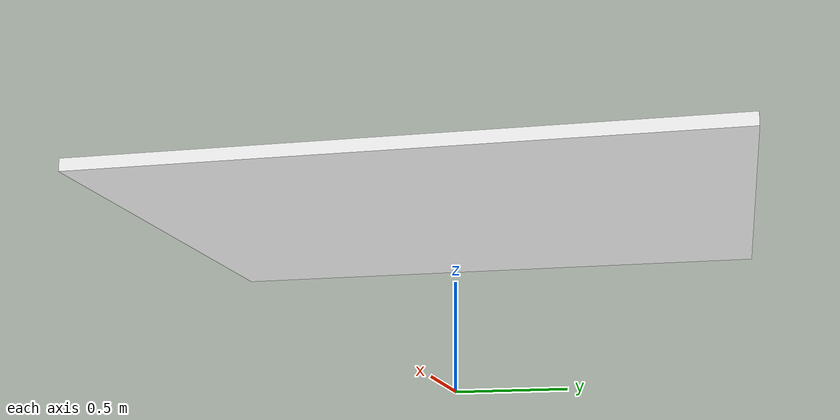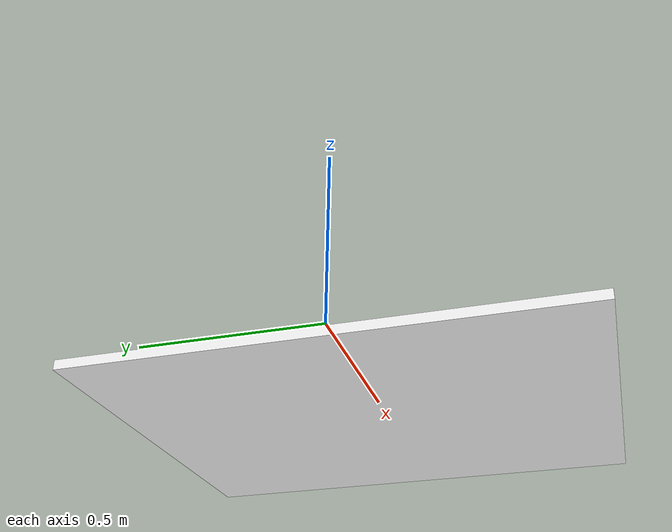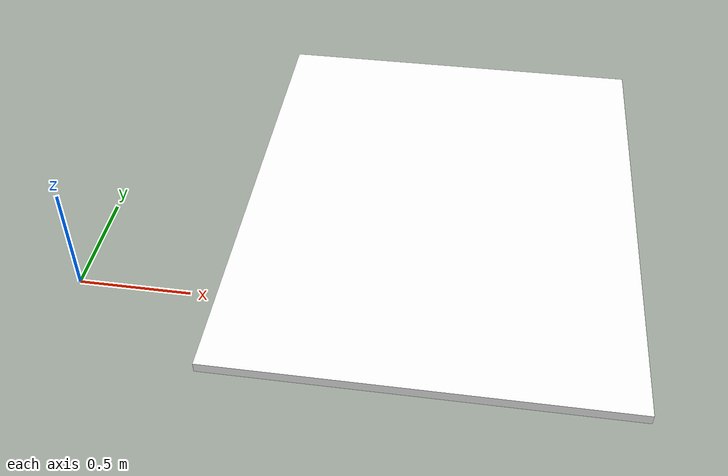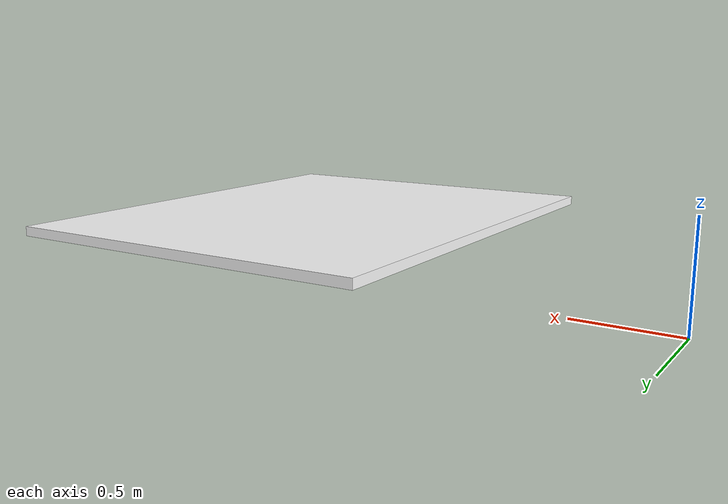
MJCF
<!-- Speed Conveyor Belt
refer to repo: https://github.com/JangSeongwon/Moving-object-grasping-with-single-active-view-camera
and issue: https://github.com/google-deepmind/mujoco/issues/547
-->

<mujoco>
	<compiler angle="radian" autolimits="true"/>

	<asset>
        <texture builtin="flat" name="texgeom" height="32" width="32" rgb1="1 1 1" type="cube"/>
        <texture builtin="flat" name="table_tex1" height="32" width="32" rgb1="1 1 1" type="cube"/>-->
		<texture builtin="flat" name="arm_tex" height="32" width="32" rgb1="1 1 1" type="cube"/>

        <texture file="textures/conveyor.png" type="2d" name="conveyorbelt"/>
        <material name="conveyor" reflectance="0.1" texrepeat="5 5" texture="conveyorbelt" texuniform="true"/>

        <material name="table_mat_white" specular="0.2" shininess="0.2" reflectance="0" rgba="1 1 1 1" texture="arm_tex"/>
        <material name="pedestal_mat" specular="0.5" shininess="0.8" reflectance="0" rgba="0.925 0.835 0.655 1" texture="table_tex1"/>
        <material name="block_mat" specular="0" shininess="0.5" reflectance="0" rgba="0.2 0.5 0.2 1" texture="texgeom"/>
        <material name="puck_mat" specular="0" shininess="0.5" reflectance="0" rgba="0.2 0.2 0.2 1" texture="texgeom"/>
    </asset>

	<worldbody>

		<body pos="1.555 0.3 0.4" name="table">
			<geom name="table" size="0.8 1 0.02" type="box" material="table_mat_white" density="20000" friction="1 0.005 0.0001"/>
		</body>

		<body name="conveyor_floor" pos="1.555 0.3 0.422">
			<geom name="conveyor_floor"  size="0.2 1 0.01" type="plane" density="2000" condim="3" friction="1 1 1" material="conveyor"/>
            <body pos="0 .9 -.005">
                <geom type="box" rgba="0 0 0 0" size=".2 .5 .01"/>
                <joint name="conveyor" type="slide" pos="0 -10 0" axis="0 1 0" damping="100" range="-1.7 0" limited="true"/>
            </body>
		</body>

		<camera fovy="80" name="third_person" pos="2.10 0.3 1.4" euler="0 0.83 1.57"/>

	</worldbody>

    <actuator>
        <general name="conveyor" joint="conveyor" gainprm="0" biasprm="-100000" biastype="affine"/>
    </actuator>

</mujoco>
